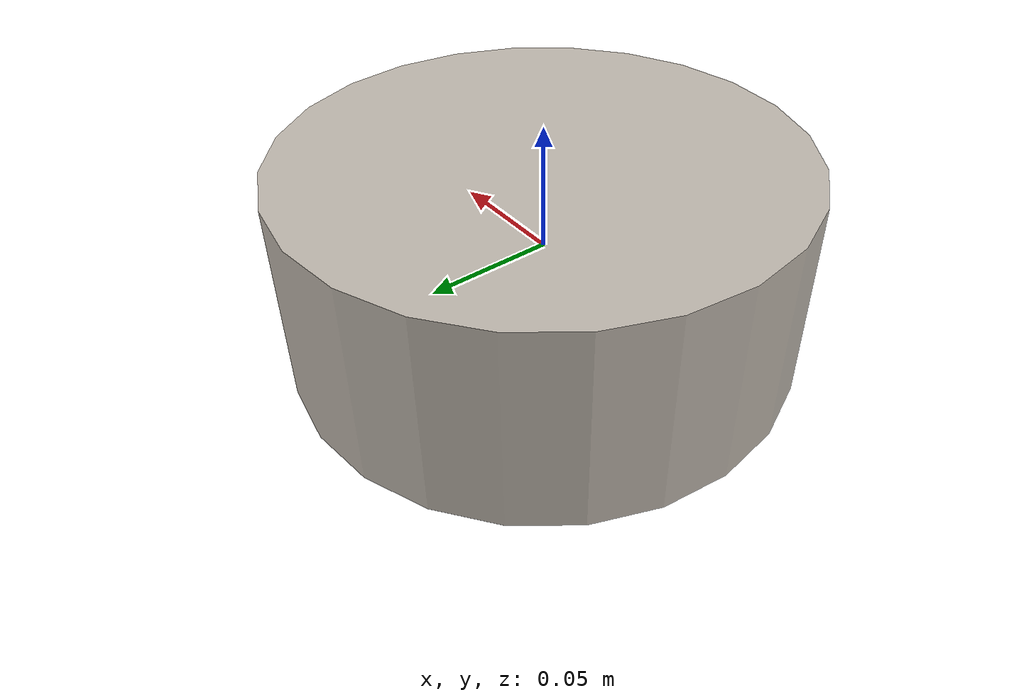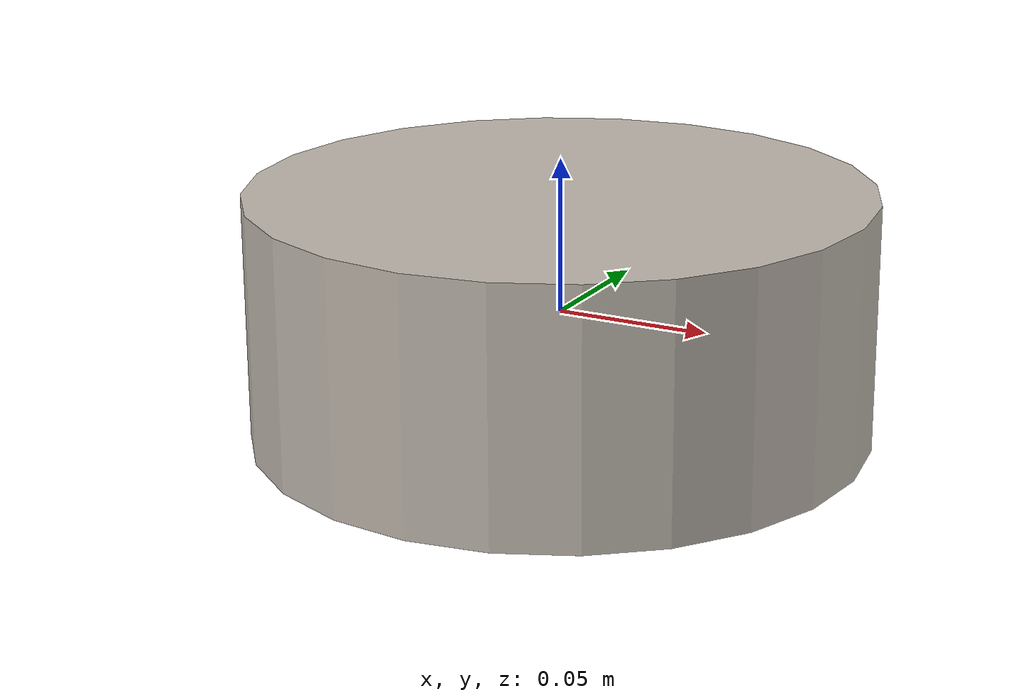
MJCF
<mujoco model="vla82_vla82_043">
  <compiler angle="radian"/>
  <asset>
    <texture name="source_texture" type="2d" file="source_texture.png"/>
    <material name="source_material" texture="source_texture" rgba="1 1 1 1"/>
  </asset>
  <default>
    <default class="visual"><geom contype="0" conaffinity="0" group="1"/></default>
    <default class="collision"><geom contype="1" conaffinity="1" group="0" density="300" friction="0.45 0.004 0.0001" solref="0.02 1" solimp="0.9 0.95 0.001"/></default>
    <default class="region"><geom contype="0" conaffinity="0" group="1" rgba="0 1 0 0" mass="0"/></default>
  </default>
  <worldbody><body><body name="object">
    <geom name="visual" class="visual" type="cylinder" size="0.100000 0.040000" material="source_material"/>
    <geom name="collision" class="collision" type="cylinder" size="0.100000 0.040000"/>
    <geom name="reg_bbox" class="region" type="box" pos="0 0 0" size="0.100000 0.100000 0.040000"/>
  </body></body></worldbody>
  <actuator/>
</mujoco>
